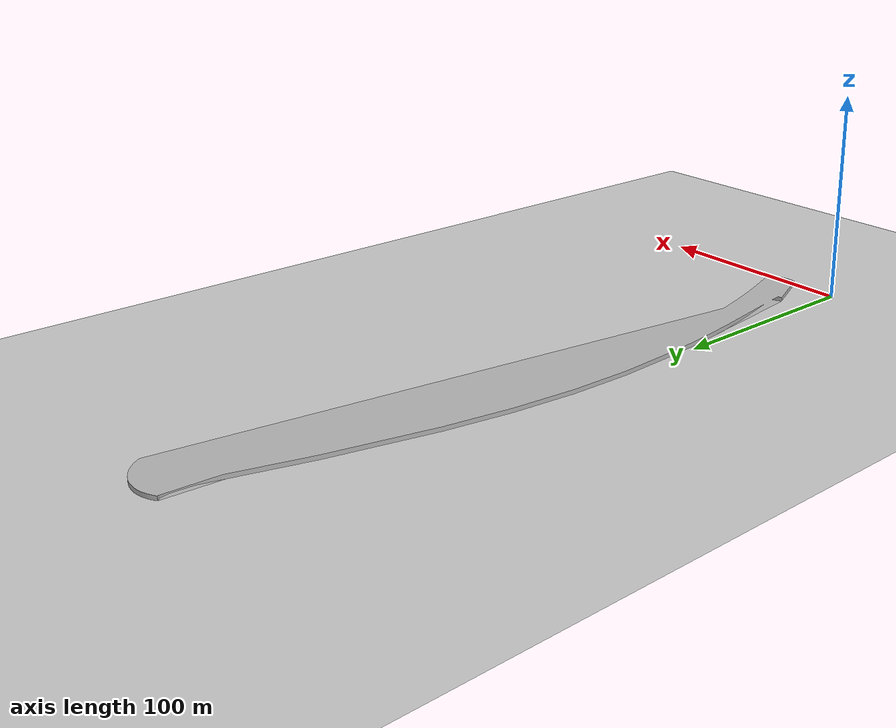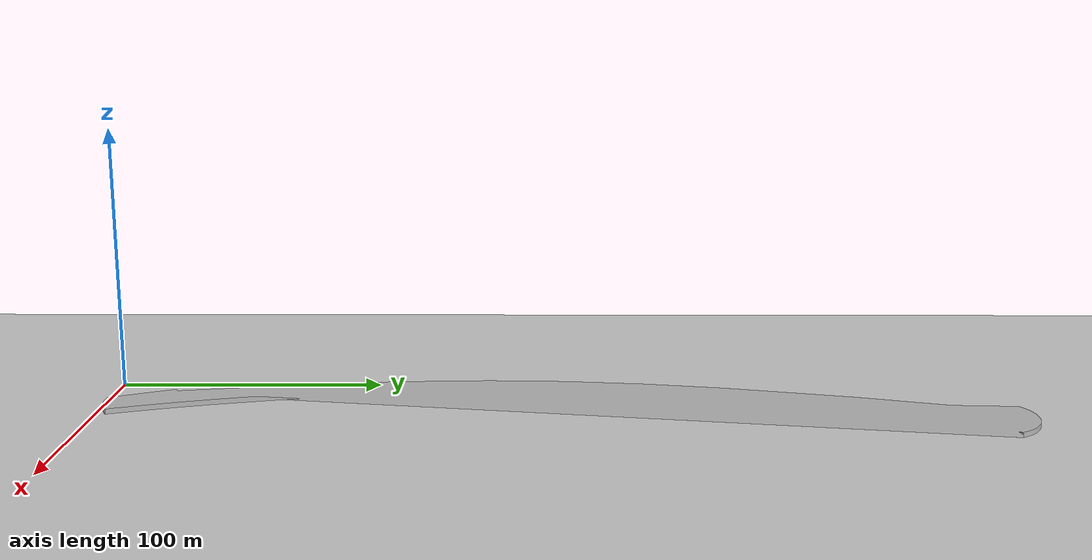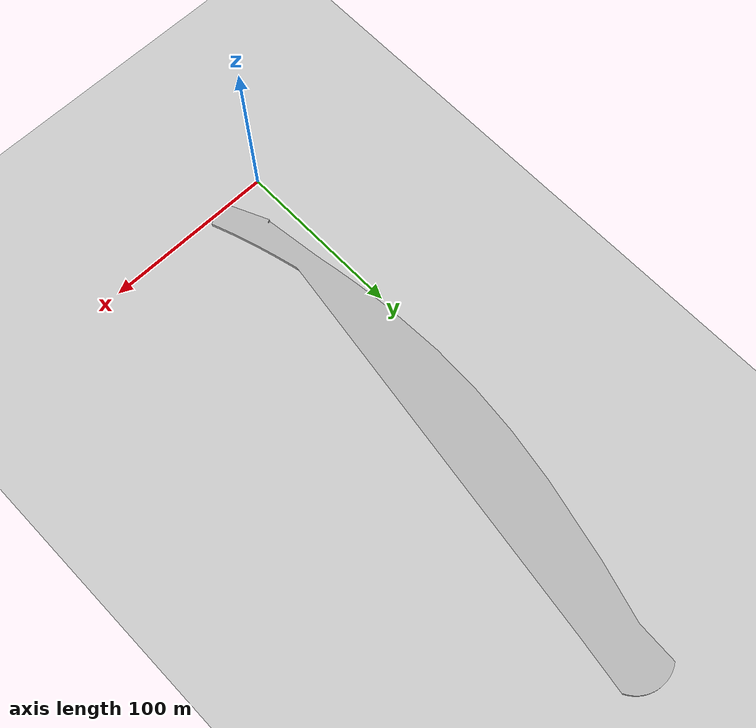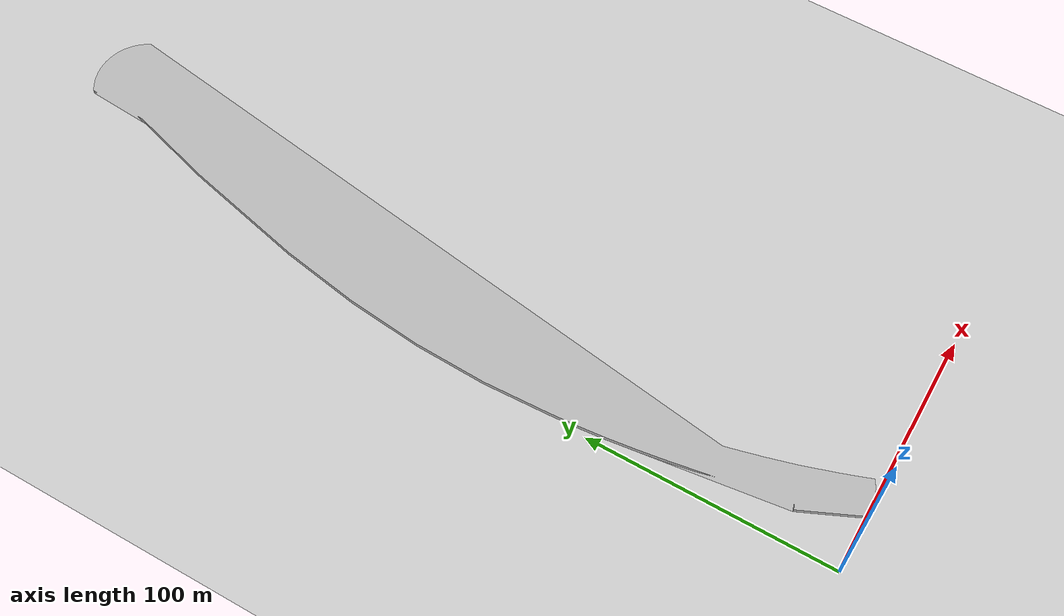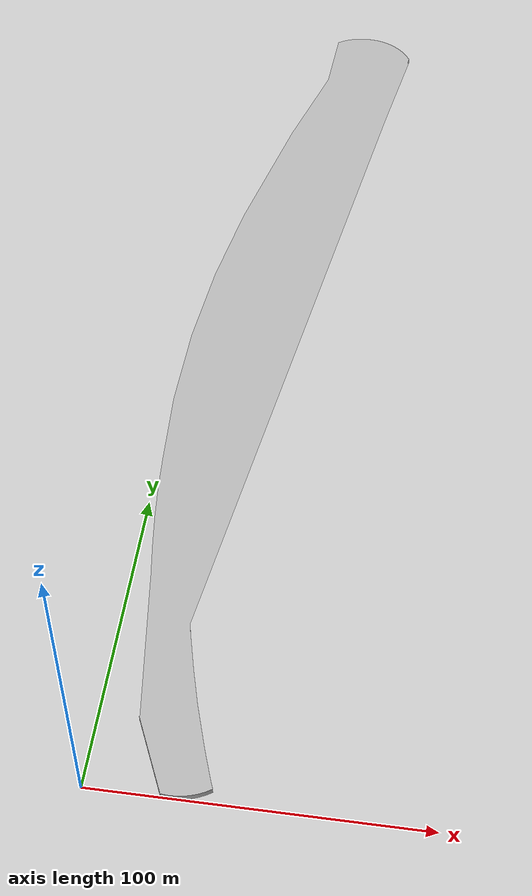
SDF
<sdf version='1.10'>
  <world name='default'>
    <plugin name='gz::sim::systems::Physics' filename='gz-sim-physics-system'/>
    <plugin name='gz::sim::systems::UserCommands' filename='gz-sim-user-commands-system'/>
    <plugin name='gz::sim::systems::SceneBroadcaster' filename='gz-sim-scene-broadcaster-system'/>
    <plugin name='gz::sim::systems::Contact' filename='gz-sim-contact-system'/>
    <physics name='1ms' type='ignored'>
      <max_step_size>0.001</max_step_size>
      <real_time_factor>1</real_time_factor>
      <real_time_update_rate>1000</real_time_update_rate>
    </physics>
    <gravity>0 0 -9.81</gravity>
    <magnetic_field>5.5645e-06 2.28758e-05 -4.23884e-05</magnetic_field>
    <atmosphere type='adiabatic'/>
    <scene>
      <ambient>0.4 0.4 0.4 1</ambient>
      <background>0.7 0.7 0.7 1</background>
      <shadows>true</shadows>
    </scene>

    <light name='sun' type='directional'>
      <pose>0 0 10 0 0 0</pose>
      <cast_shadows>true</cast_shadows>
      <intensity>0.6</intensity>
      <direction>-0.5 0.1 -0.9</direction>
      <diffuse>0.8 0.8 0.8 1</diffuse>
      <specular>0.3 0.3 0.3 1</specular>
      <attenuation>
        <range>1000</range>
        <linear>0.01</linear>
        <constant>0.9</constant>
        <quadratic>0.001</quadratic>
      </attenuation>
      <spot>
        <inner_angle>0</inner_angle>
        <outer_angle>0</outer_angle>
        <falloff>0</falloff>
      </spot>
    </light>

    <model name='ground_plane'>
      <static>true</static>
      <link name='link'>
        <collision name='collision'>
          <geometry>
            <plane>
              <normal>0 0 1</normal>
              <size>100 100</size>
            </plane>
          </geometry>
          <surface>
            <friction>
              <ode/>
            </friction>
            <bounce/>
            <contact/>
          </surface>
        </collision>
        <visual name='visual'>
          <geometry>
            <plane>
              <normal>0 0 1</normal>
              <size>100 100</size>
            </plane>
          </geometry>
          <material>
            <ambient>0.8 0.8 0.8 1</ambient>
            <diffuse>0.8 0.8 0.8 1</diffuse>
            <specular>0.8 0.8 0.8 1</specular>
          </material>
        </visual>
        <pose>0 0 0 0 0 0</pose>
        <inertial>
          <pose>0 0 0 0 0 0</pose>
          <mass>1</mass>
          <inertia>
            <ixx>1</ixx>
            <ixy>0</ixy>
            <ixz>0</ixz>
            <iyy>1</iyy>
            <iyz>0</iyz>
            <izz>1</izz>
          </inertia>
        </inertial>
        <enable_wind>false</enable_wind>
      </link>
      <pose>0 0 0 0 0 0</pose>
    </model>

    <model name='my_model'>
      <static>true</static>
      <pose>0 0 0 0 0 0</pose>
      <link name='link'>
        <visual name='visual'>
          <geometry>
            <mesh>
              <uri>model://embedded_model/model.obj</uri>
              <scale>1 1 1</scale>
            </mesh>
          </geometry>
        </visual>
        <collision name='collision'>
          <geometry>
            <mesh>
              <uri>model://embedded_model/model.obj</uri>
              <scale>1 1 1</scale>
            </mesh>
          </geometry>
        </collision>
        <inertial>
            <mass>1</mass>
            <inertia>
              <ixx>1</ixx>
              <ixy>0</ixy>
              <ixz>0</ixz>
              <iyy>1</iyy>
              <iyz>0</iyz>
              <izz>1</izz>
            </inertia>
          </inertial>
      </link>
    </model>
  </world>
</sdf>
